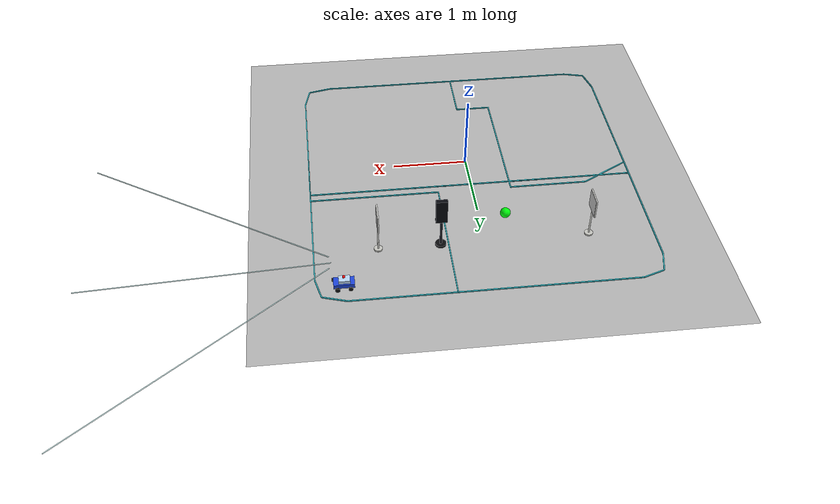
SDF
<sdf version="1.7">
 <world name="autonomous_map_3d_world">
  <model name="autonomous_map_3d">
   <static>1</static>
   <link name="map_link">
    <visual name="textured_map_visual">
     <geometry>
      <mesh><uri>model://autonomous_map_3d/meshes/autonomous_map_3d.dae</uri><scale>-1.0 1.0 1.0</scale></mesh>
     </geometry>
    </visual>
    <collision name="floor_collision">
     <pose>0 0 -0.01 0 -0 0</pose>
     <geometry><box><size>6 6 0.02</size></box></geometry>
    </collision>
   </link>
   <pose>0 0.3 0 0 -0 0</pose>
  </model>
  <model name="traffic_light_top_island">
   <static>1</static>
   <link name="traffic_light_link">
    <visual name="base_visual">
     <pose>0 0 0.015 0 -0 0</pose>
     <geometry><cylinder><radius>0.07</radius><length>0.03</length></cylinder></geometry>
     <material><ambient>0.03 0.03 0.04 1</ambient><diffuse>0.04 0.04 0.05 1</diffuse></material>
    </visual>
    <visual name="pole_visual">
     <pose>0 0 0.25 0 -0 0</pose>
     <geometry><cylinder><radius>0.016</radius><length>0.47</length></cylinder></geometry>
     <material><ambient>0.08 0.08 0.1 1</ambient><diffuse>0.1 0.1 0.13 1</diffuse></material>
    </visual>
    <visual name="housing_visual">
     <pose>0 -0.006 0.565 0 -0 0</pose>
     <geometry><box><size>0.145 0.055 0.34</size></box></geometry>
     <material><ambient>0.02 0.025 0.04 1</ambient><diffuse>0.03 0.035 0.06 1</diffuse></material>
    </visual>
    <visual name="red_lens_visual">
     <pose>0 -0.038 0.66 0 -0 0</pose>
     <geometry><sphere><radius>0.043</radius></sphere></geometry>
     <material>
      <ambient>0.035 0.002 0.002 1</ambient>
      <diffuse>0.06 0.004 0.004 1</diffuse>
      <emissive>0 0 0 1</emissive>
     </material>
    </visual>
    <visual name="yellow_lens_visual">
     <pose>0 -0.038 0.565 0 -0 0</pose>
     <geometry><sphere><radius>0.043</radius></sphere></geometry>
     <material>
      <ambient>0.035 0.025 0.002 1</ambient>
      <diffuse>0.06 0.045 0.004 1</diffuse>
      <emissive>0 0 0 1</emissive>
     </material>
    </visual>
    <visual name="green_lens_visual">
     <pose>0 -0.038 0.47 0 -0 0</pose>
     <geometry><sphere><radius>0.043</radius></sphere></geometry>
     <material>
      <ambient>0.002 0.04 0.004 1</ambient>
      <diffuse>0.004 0.078 0.01 1</diffuse>
      <emissive>0 0 0 1</emissive>
     </material>
    </visual>
   </link>
   <pose>0.562500 1.589100 0.000000 0.000000 -0.000000 -0.000003</pose>
  </model>
  <model name="traffic_light_top_island_green_active_lamp">
   <static>0</static>
   <link name="lamp_link">
    <gravity>0</gravity>
    <visual name="lamp_visual">
     <geometry><sphere><radius>0.065</radius></sphere></geometry>
     <material>
      <ambient>0 1 0.05 1</ambient>
      <diffuse>0 1 0.05 1</diffuse>
      <emissive>0 0.0313726 0.3 1</emissive>
     </material>
    </visual>
    <kinematic>1</kinematic>
    <inertial>
     <inertia><ixx>1</ixx><ixy>0</ixy><ixz>0</ixz><iyy>1</iyy><iyz>0</iyz><izz>1</izz></inertia>
     <mass>1</mass>
    </inertial>
   </link>
   <pose>-0.241400 1.589700 0.470000 0.000000 -0.000000 3.141593</pose>
  </model>
  <model name="sign_go_straight_top_island">
   <static>1</static>
   <link name="sign_link">
    <visual name="base_visual">
     <pose>0 0 0.01 0 -0 0</pose>
     <geometry><cylinder><radius>0.055</radius><length>0.02</length></cylinder></geometry>
     <material><ambient>0.72 0.72 0.7 1</ambient><diffuse>0.78 0.78 0.76 1</diffuse></material>
    </visual>
    <visual name="pole_visual">
     <pose>0 0 0.245 0 -0 0</pose>
     <geometry><cylinder><radius>0.011</radius><length>0.47</length></cylinder></geometry>
     <material><ambient>0.72 0.72 0.7 1</ambient><diffuse>0.82 0.82 0.8 1</diffuse></material>
    </visual>
    <visual name="back_plate_visual">
     <pose>0 0 0.52 0 -0 0</pose>
     <geometry><box><size>0.26 0.014 0.26</size></box></geometry>
     <material><ambient>0.96 0.96 0.94 1</ambient><diffuse>0.98 0.98 0.96 1</diffuse></material>
    </visual>
    <visual name="sign_face_visual">
     <pose>0 -0.011 0.52 0 -0 0</pose>
     <geometry><box><size>0.246 0.004 0.246</size></box></geometry>
     <material>
      <script>
       <uri>model://road_sign_go_straight/materials/scripts</uri>
       <uri>model://road_sign_go_straight/materials/textures</uri>
       <name>RoadSign/GoStraight</name>
      </script>
     </material>
    </visual>
   </link>
   <pose>1.359400 1.589100 0.000000 0.000000 -0.000000 1.570793</pose>
  </model>
  <model name="sign_turn_right_top_right_island">
   <static>1</static>
   <link name="sign_link">
    <visual name="base_visual">
     <pose>0 0 0.01 0 -0 0</pose>
     <geometry><cylinder><radius>0.055</radius><length>0.02</length></cylinder></geometry>
     <material><ambient>0.72 0.72 0.7 1</ambient><diffuse>0.78 0.78 0.76 1</diffuse></material>
    </visual>
    <visual name="pole_visual">
     <pose>0 0 0.245 0 -0 0</pose>
     <geometry><cylinder><radius>0.011</radius><length>0.47</length></cylinder></geometry>
     <material><ambient>0.72 0.72 0.7 1</ambient><diffuse>0.82 0.82 0.8 1</diffuse></material>
    </visual>
    <visual name="back_plate_visual">
     <pose>0 0 0.52 0 -0 0</pose>
     <geometry><box><size>0.26 0.014 0.26</size></box></geometry>
     <material><ambient>0.96 0.96 0.94 1</ambient><diffuse>0.98 0.98 0.96 1</diffuse></material>
    </visual>
    <visual name="sign_face_visual">
     <pose>0 -0.011 0.52 0 -0 0</pose>
     <geometry><box><size>0.246 0.004 0.246</size></box></geometry>
     <material>
      <script>
       <uri>model://road_sign_turn_right/materials/scripts</uri>
       <uri>model://road_sign_turn_right/materials/textures</uri>
       <name>RoadSign/TurnRight</name>
      </script>
     </material>
    </visual>
   </link>
   <pose>-1.359400 1.589100 0.000000 0.000000 -0.000000 1.570793</pose>
  </model>
  <model name="track_preview_car">
   <static>0</static>
   <allow_auto_disable>0</allow_auto_disable>
   <link name="body">
    <inertial>
     <mass>1</mass>
     <inertia><ixx>0.01</ixx><iyy>0.01</iyy><izz>0.01</izz><ixy>0</ixy><ixz>0</ixz><iyz>0</iyz></inertia>
    </inertial>
    <visual name="chassis_visual">
     <pose>0 0 0.065 0 -0 0</pose>
     <geometry><box><size>0.26 0.14 0.055</size></box></geometry>
     <material>
      <ambient>0.08 0.2 0.7 1</ambient>
      <diffuse>0.12 0.28 0.88 1</diffuse>
      <specular>0.1 0.1 0.1 1</specular>
     </material>
    </visual>
    <visual name="roof_visual">
     <pose>-0.005 0 0.115 0 -0 0</pose>
     <geometry><box><size>0.14 0.105 0.045</size></box></geometry>
     <material>
      <ambient>0.65 0.78 0.95 0.92</ambient>
      <diffuse>0.75 0.86 0.98 0.92</diffuse>
      <specular>0.1 0.1 0.1 1</specular>
     </material>
    </visual>
    <visual name="front_marker_visual">
     <pose>0.105 0 0.083 0 -0 0</pose>
     <geometry><box><size>0.025 0.075 0.018</size></box></geometry>
     <material>
      <ambient>1 0.85 0.2 1</ambient>
      <diffuse>1 0.88 0.25 1</diffuse>
      <specular>0.05 0.05 0.05 1</specular>
     </material>
    </visual>
    <visual name="camera_lens_visual">
     <pose>0.138 0 0.126 0 -0 0</pose>
     <geometry><box><size>0.016 0.04 0.022</size></box></geometry>
     <material>
      <ambient>0.02 0.02 0.025 1</ambient>
      <diffuse>0.04 0.04 0.05 1</diffuse>
      <specular>0.05 0.05 0.05 1</specular>
     </material>
    </visual>
    <visual name="camera_view_left_ray_visual">
     <pose>1.67 1.15 0.335 -0 0.0505 0.6109</pose>
     <geometry><box><size>3.68 0.008 0.008</size></box></geometry>
     <material>
      <ambient>0.85 1 1 0.82</ambient>
      <diffuse>0.85 1 1 0.82</diffuse>
      <emissive>0.2 0.55 0.75 1</emissive>
     </material>
    </visual>
    <visual name="camera_view_center_ray_visual">
     <pose>1.67 0 0.335 0 0.0555 0</pose>
     <geometry><box><size>3.0647 0.008 0.008</size></box></geometry>
     <material>
      <ambient>0.85 1 1 0.82</ambient>
      <diffuse>0.85 1 1 0.82</diffuse>
      <emissive>0.2 0.55 0.75 1</emissive>
     </material>
    </visual>
    <visual name="camera_view_right_ray_visual">
     <pose>1.67 -1.15 0.335 0 0.0505 -0.6109</pose>
     <geometry><box><size>3.68 0.008 0.008</size></box></geometry>
     <material>
      <ambient>0.85 1 1 0.82</ambient>
      <diffuse>0.85 1 1 0.82</diffuse>
      <emissive>0.2 0.55 0.75 1</emissive>
     </material>
    </visual>
    <visual name="debug_origin_marker_visual">
     <pose>0 0 0.165 0 -0 0</pose>
     <geometry><sphere><radius>0.018</radius></sphere></geometry>
     <material>
      <ambient>1 0.02 0.02 1</ambient>
      <diffuse>1 0.04 0.04 1</diffuse>
      <specular>0.08 0.08 0.08 1</specular>
     </material>
    </visual>
    <visual name="debug_ground_origin_visual">
     <pose>0 0 -0.017 0 -0 0</pose>
     <geometry><cylinder><radius>0.018</radius><length>0.004</length></cylinder></geometry>
     <material>
      <ambient>1 0.02 0.02 1</ambient>
      <diffuse>1 0.04 0.04 1</diffuse>
      <specular>0.08 0.08 0.08 1</specular>
     </material>
    </visual>
    <visual name="debug_ground_footprint_front_visual">
     <pose>0.165 0 -0.017 0 -0 0</pose>
     <geometry><box><size>0.008 0.238 0.004</size></box></geometry>
     <material>
      <ambient>0 0.7 1 1</ambient>
      <diffuse>0.05 0.86 1 1</diffuse>
      <specular>0.02 0.02 0.02 1</specular>
     </material>
    </visual>
    <visual name="debug_ground_footprint_rear_visual">
     <pose>-0.145 0 -0.017 0 -0 0</pose>
     <geometry><box><size>0.008 0.238 0.004</size></box></geometry>
     <material>
      <ambient>0 0.7 1 1</ambient>
      <diffuse>0.05 0.86 1 1</diffuse>
      <specular>0.02 0.02 0.02 1</specular>
     </material>
    </visual>
    <visual name="debug_ground_footprint_left_visual">
     <pose>0.01 0.115 -0.017 0 -0 0</pose>
     <geometry><box><size>0.318 0.008 0.004</size></box></geometry>
     <material>
      <ambient>0 0.7 1 1</ambient>
      <diffuse>0.05 0.86 1 1</diffuse>
      <specular>0.02 0.02 0.02 1</specular>
     </material>
    </visual>
    <visual name="debug_ground_footprint_right_visual">
     <pose>0.01 -0.115 -0.017 0 -0 0</pose>
     <geometry><box><size>0.318 0.008 0.004</size></box></geometry>
     <material>
      <ambient>0 0.7 1 1</ambient>
      <diffuse>0.05 0.86 1 1</diffuse>
      <specular>0.02 0.02 0.02 1</specular>
     </material>
    </visual>
    <visual name="rear_left_dummy_wheel_visual">
     <pose>-0.08 0.085 0.032 1.5708 -0 0</pose>
     <geometry><cylinder><radius>0.028</radius><length>0.016</length></cylinder></geometry>
     <material>
      <ambient>0.03 0.03 0.03 1</ambient>
      <diffuse>0.07 0.07 0.07 1</diffuse>
      <specular>0.02 0.02 0.02 1</specular>
     </material>
    </visual>
    <visual name="rear_right_dummy_wheel_visual">
     <pose>-0.08 -0.085 0.032 1.5708 -0 0</pose>
     <geometry><cylinder><radius>0.028</radius><length>0.016</length></cylinder></geometry>
     <material>
      <ambient>0.03 0.03 0.03 1</ambient>
      <diffuse>0.07 0.07 0.07 1</diffuse>
      <specular>0.02 0.02 0.02 1</specular>
     </material>
    </visual>
    <collision name="rear_left_caster_collision">
     <pose>-0.095 0.072 0.026 0 -0 0</pose>
     <geometry><sphere><radius>0.024</radius></sphere></geometry>
     <surface><friction><ode><mu>0.05</mu><mu2>0.05</mu2></ode></friction></surface>
    </collision>
    <collision name="rear_right_caster_collision">
     <pose>-0.095 -0.072 0.026 0 -0 0</pose>
     <geometry><sphere><radius>0.024</radius></sphere></geometry>
     <surface><friction><ode><mu>0.05</mu><mu2>0.05</mu2></ode></friction></surface>
    </collision>
    <collision name="body_collision">
     <pose>0 0 0.065 0 -0 0</pose>
     <geometry><box><size>0.26 0.14 0.05</size></box></geometry>
    </collision>
    <sensor name="front_camera" type="camera">
     <pose>0.14 0 0.42 0 0.18 0</pose>
     <always_on>1</always_on>
     <update_rate>30</update_rate>
     <visualize>0</visualize>
     <camera>
      <horizontal_fov>2.45</horizontal_fov>
      <image><width>960</width><height>540</height><format>R8G8B8</format></image>
      <clip><near>0.02</near><far>6</far></clip>
     </camera>
     <plugin name="front_camera_controller" filename="libgazebo_ros_camera.so">
      <ros>
       <namespace>/track_preview_car</namespace>
       <remapping>image_raw:=image_raw</remapping>
       <remapping>camera_info:=camera_info</remapping>
      </ros>
      <camera_name>camera</camera_name>
      <frame_name>track_preview_car/front_camera</frame_name>
     </plugin>
    </sensor>
   </link>
   <link name="left_wheel">
    <pose>0.08 0.088 0.032 0 -0 0</pose>
    <inertial>
     <mass>0.08</mass>
     <inertia><ixx>5e-05</ixx><iyy>8e-05</iyy><izz>5e-05</izz><ixy>0</ixy><ixz>0</ixz><iyz>0</iyz></inertia>
    </inertial>
    <visual name="left_wheel_visual">
     <pose>0 0 0 1.5708 -0 0</pose>
     <geometry><cylinder><radius>0.03</radius><length>0.02</length></cylinder></geometry>
     <material>
      <ambient>0.03 0.03 0.03 1</ambient>
      <diffuse>0.07 0.07 0.07 1</diffuse>
      <specular>0.02 0.02 0.02 1</specular>
     </material>
    </visual>
    <collision name="left_wheel_collision">
     <pose>0 0 0 1.5708 -0 0</pose>
     <geometry><cylinder><radius>0.03</radius><length>0.02</length></cylinder></geometry>
     <surface><friction><ode><mu>1.2</mu><mu2>1.2</mu2></ode></friction></surface>
    </collision>
   </link>
   <link name="right_wheel">
    <pose>0.08 -0.088 0.032 0 -0 0</pose>
    <inertial>
     <mass>0.08</mass>
     <inertia><ixx>5e-05</ixx><iyy>8e-05</iyy><izz>5e-05</izz><ixy>0</ixy><ixz>0</ixz><iyz>0</iyz></inertia>
    </inertial>
    <visual name="right_wheel_visual">
     <pose>0 0 0 1.5708 -0 0</pose>
     <geometry><cylinder><radius>0.03</radius><length>0.02</length></cylinder></geometry>
     <material>
      <ambient>0.03 0.03 0.03 1</ambient>
      <diffuse>0.07 0.07 0.07 1</diffuse>
      <specular>0.02 0.02 0.02 1</specular>
     </material>
    </visual>
    <collision name="right_wheel_collision">
     <pose>0 0 0 1.5708 -0 0</pose>
     <geometry><cylinder><radius>0.03</radius><length>0.02</length></cylinder></geometry>
     <surface><friction><ode><mu>1.2</mu><mu2>1.2</mu2></ode></friction></surface>
    </collision>
   </link>
   <joint name="left_wheel_joint" type="revolute">
    <parent>body</parent>
    <child>left_wheel</child>
    <axis>
     <xyz>0 1 0</xyz>
     <limit><lower>-1e+16</lower><upper>1e+16</upper></limit>
     <dynamics><spring_reference>0</spring_reference><spring_stiffness>0</spring_stiffness></dynamics>
    </axis>
   </joint>
   <joint name="right_wheel_joint" type="revolute">
    <parent>body</parent>
    <child>right_wheel</child>
    <axis>
     <xyz>0 1 0</xyz>
     <limit><lower>-1e+16</lower><upper>1e+16</upper></limit>
     <dynamics><spring_reference>0</spring_reference><spring_stiffness>0</spring_stiffness></dynamics>
    </axis>
   </joint>
   <plugin name="track_preview_car_diff_drive" filename="libgazebo_ros_diff_drive.so">
    <ros>
     <namespace>/track_preview_car</namespace>
     <remapping>cmd_vel:=cmd_vel</remapping>
     <remapping>odom:=odom</remapping>
    </ros>
    <left_joint>left_wheel_joint</left_joint>
    <right_joint>right_wheel_joint</right_joint>
    <wheel_separation>0.176</wheel_separation>
    <wheel_diameter>0.06</wheel_diameter>
    <max_wheel_torque>2.0</max_wheel_torque>
    <max_wheel_acceleration>8.0</max_wheel_acceleration>
    <odometry_frame>odom</odometry_frame>
    <robot_base_frame>body</robot_base_frame>
    <publish_odom>1</publish_odom>
    <publish_odom_tf>0</publish_odom_tf>
    <publish_wheel_tf>0</publish_wheel_tf>
    <update_rate>50</update_rate>
   </plugin>
   <pose>1.828120 2.179690 -0.002000 0.000000 -0.000000 0.000003</pose>
  </model>
  <model name="route_preview_map_pose_offset_cyan">
   <static>1</static>
   <link name="route_preview_link">
    <visual name="route_segment_0000">
     <pose>-0.937500 2.479687 0.055000 0.000000 0.000000 0.000000</pose>
     <geometry><box><size>1.781250 0.014000 0.014000</size></box></geometry>
     <material>
      <script><name>Gazebo/RoutePreviewCyan</name></script>
      <ambient>0 0.9 1 1</ambient>
      <diffuse>0 0.9 1 1</diffuse>
      <emissive>0 0.5 0.8 1</emissive>
     </material>
    </visual>
    <visual name="route_segment_0001">
     <pose>0.210938 2.479687 0.055000 0.000000 0.000000 0.000000</pose>
     <geometry><box><size>0.515625 0.014000 0.014000</size></box></geometry>
     <material>
      <script><name>Gazebo/RoutePreviewCyan</name></script>
      <ambient>0 0.9 1 1</ambient>
      <diffuse>0 0.9 1 1</diffuse>
      <emissive>0 0.5 0.8 1</emissive>
     </material>
    </visual>
    <visual name="route_segment_0002">
     <pose>0.703125 2.479687 0.055000 0.000000 0.000000 0.000000</pose>
     <geometry><box><size>0.468750 0.014000 0.014000</size></box></geometry>
     <material>
      <script><name>Gazebo/RoutePreviewCyan</name></script>
      <ambient>0 0.9 1 1</ambient>
      <diffuse>0 0.9 1 1</diffuse>
      <emissive>0 0.5 0.8 1</emissive>
     </material>
    </visual>
    <visual name="route_segment_0003">
     <pose>1.371094 2.479687 0.055000 0.000000 0.000000 0.000000</pose>
     <geometry><box><size>0.867188 0.014000 0.014000</size></box></geometry>
     <material>
      <script><name>Gazebo/RoutePreviewCyan</name></script>
      <ambient>0 0.9 1 1</ambient>
      <diffuse>0 0.9 1 1</diffuse>
      <emissive>0 0.5 0.8 1</emissive>
     </material>
    </visual>
    <visual name="route_segment_0004">
     <pose>1.957031 2.432812 0.055000 0.000000 0.000000 -0.298499</pose>
     <geometry><box><size>0.318784 0.014000 0.014000</size></box></geometry>
     <material>
      <script><name>Gazebo/RoutePreviewCyan</name></script>
      <ambient>0 0.9 1 1</ambient>
      <diffuse>0 0.9 1 1</diffuse>
      <emissive>0 0.5 0.8 1</emissive>
     </material>
    </visual>
    <visual name="route_segment_0005">
     <pose>2.144531 2.245312 0.055000 0.000000 0.000000 -1.325818</pose>
     <geometry><box><size>0.289906 0.014000 0.014000</size></box></geometry>
     <material>
      <script><name>Gazebo/RoutePreviewCyan</name></script>
      <ambient>0 0.9 1 1</ambient>
      <diffuse>0 0.9 1 1</diffuse>
      <emissive>0 0.5 0.8 1</emissive>
     </material>
    </visual>
    <visual name="route_segment_0006">
     <pose>2.179688 1.647656 0.055000 0.000000 0.000000 -1.570796</pose>
     <geometry><box><size>0.914062 0.014000 0.014000</size></box></geometry>
     <material>
      <script><name>Gazebo/RoutePreviewCyan</name></script>
      <ambient>0 0.9 1 1</ambient>
      <diffuse>0 0.9 1 1</diffuse>
      <emissive>0 0.5 0.8 1</emissive>
     </material>
    </visual>
    <visual name="route_segment_0007">
     <pose>2.179688 0.487500 0.055000 0.000000 0.000000 -1.570796</pose>
     <geometry><box><size>1.406250 0.014000 0.014000</size></box></geometry>
     <material>
      <script><name>Gazebo/RoutePreviewCyan</name></script>
      <ambient>0 0.9 1 1</ambient>
      <diffuse>0 0.9 1 1</diffuse>
      <emissive>0 0.5 0.8 1</emissive>
     </material>
    </visual>
    <visual name="route_segment_0008">
     <pose>2.179688 -0.860156 0.055000 0.000000 0.000000 -1.570796</pose>
     <geometry><box><size>1.289062 0.014000 0.014000</size></box></geometry>
     <material>
      <script><name>Gazebo/RoutePreviewCyan</name></script>
      <ambient>0 0.9 1 1</ambient>
      <diffuse>0 0.9 1 1</diffuse>
      <emissive>0 0.5 0.8 1</emissive>
     </material>
    </visual>
    <visual name="route_segment_0009">
     <pose>2.144531 -1.657031 0.055000 0.000000 0.000000 -1.797595</pose>
     <geometry><box><size>0.312695 0.014000 0.014000</size></box></geometry>
     <material>
      <script><name>Gazebo/RoutePreviewCyan</name></script>
      <ambient>0 0.9 1 1</ambient>
      <diffuse>0 0.9 1 1</diffuse>
      <emissive>0 0.5 0.8 1</emissive>
     </material>
    </visual>
    <visual name="route_segment_0010">
     <pose>1.957031 -1.844531 0.055000 0.000000 0.000000 -2.914794</pose>
     <geometry><box><size>0.312695 0.014000 0.014000</size></box></geometry>
     <material>
      <script><name>Gazebo/RoutePreviewCyan</name></script>
      <ambient>0 0.9 1 1</ambient>
      <diffuse>0 0.9 1 1</diffuse>
      <emissive>0 0.5 0.8 1</emissive>
     </material>
    </visual>
    <visual name="route_segment_0011">
     <pose>1.371094 -1.879687 0.055000 0.000000 0.000000 3.141593</pose>
     <geometry><box><size>0.867188 0.014000 0.014000</size></box></geometry>
     <material>
      <script><name>Gazebo/RoutePreviewCyan</name></script>
      <ambient>0 0.9 1 1</ambient>
      <diffuse>0 0.9 1 1</diffuse>
      <emissive>0 0.5 0.8 1</emissive>
     </material>
    </visual>
    <visual name="route_segment_0012">
     <pose>0.445312 -1.879687 0.055000 0.000000 0.000000 3.141593</pose>
     <geometry><box><size>0.984375 0.014000 0.014000</size></box></geometry>
     <material>
      <script><name>Gazebo/RoutePreviewCyan</name></script>
      <ambient>0 0.9 1 1</ambient>
      <diffuse>0 0.9 1 1</diffuse>
      <emissive>0 0.5 0.8 1</emissive>
     </material>
    </visual>
    <visual name="route_segment_0013">
     <pose>-0.539062 -1.879687 0.055000 0.000000 0.000000 3.141593</pose>
     <geometry><box><size>0.984375 0.014000 0.014000</size></box></geometry>
     <material>
      <script><name>Gazebo/RoutePreviewCyan</name></script>
      <ambient>0 0.9 1 1</ambient>
      <diffuse>0 0.9 1 1</diffuse>
      <emissive>0 0.5 0.8 1</emissive>
     </material>
    </visual>
    <visual name="route_segment_0014">
     <pose>-1.429688 -1.879687 0.055000 0.000000 0.000000 3.141593</pose>
     <geometry><box><size>0.796875 0.014000 0.014000</size></box></geometry>
     <material>
      <script><name>Gazebo/RoutePreviewCyan</name></script>
      <ambient>0 0.9 1 1</ambient>
      <diffuse>0 0.9 1 1</diffuse>
      <emissive>0 0.5 0.8 1</emissive>
     </material>
    </visual>
    <visual name="route_segment_0015">
     <pose>-1.968750 -1.844531 0.055000 0.000000 0.000000 2.896614</pose>
     <geometry><box><size>0.289906 0.014000 0.014000</size></box></geometry>
     <material>
      <script><name>Gazebo/RoutePreviewCyan</name></script>
      <ambient>0 0.9 1 1</ambient>
      <diffuse>0 0.9 1 1</diffuse>
      <emissive>0 0.5 0.8 1</emissive>
     </material>
    </visual>
    <visual name="route_segment_0016">
     <pose>-2.144531 -1.657031 0.055000 0.000000 0.000000 1.797595</pose>
     <geometry><box><size>0.312695 0.014000 0.014000</size></box></geometry>
     <material>
      <script><name>Gazebo/RoutePreviewCyan</name></script>
      <ambient>0 0.9 1 1</ambient>
      <diffuse>0 0.9 1 1</diffuse>
      <emissive>0 0.5 0.8 1</emissive>
     </material>
    </visual>
    <visual name="route_segment_0017">
     <pose>-2.179688 -0.602344 0.055000 0.000000 0.000000 1.570796</pose>
     <geometry><box><size>1.804688 0.014000 0.014000</size></box></geometry>
     <material>
      <script><name>Gazebo/RoutePreviewCyan</name></script>
      <ambient>0 0.9 1 1</ambient>
      <diffuse>0 0.9 1 1</diffuse>
      <emissive>0 0.5 0.8 1</emissive>
     </material>
    </visual>
    <visual name="route_segment_0018">
     <pose>-2.179688 0.417188 0.055000 0.000000 0.000000 1.570796</pose>
     <geometry><box><size>0.234375 0.014000 0.014000</size></box></geometry>
     <material>
      <script><name>Gazebo/RoutePreviewCyan</name></script>
      <ambient>0 0.9 1 1</ambient>
      <diffuse>0 0.9 1 1</diffuse>
      <emissive>0 0.5 0.8 1</emissive>
     </material>
    </visual>
    <visual name="route_segment_0019">
     <pose>-2.179688 0.862500 0.055000 0.000000 0.000000 1.570796</pose>
     <geometry><box><size>0.656250 0.014000 0.014000</size></box></geometry>
     <material>
      <script><name>Gazebo/RoutePreviewCyan</name></script>
      <ambient>0 0.9 1 1</ambient>
      <diffuse>0 0.9 1 1</diffuse>
      <emissive>0 0.5 0.8 1</emissive>
     </material>
    </visual>
    <visual name="route_segment_0020">
     <pose>-2.179688 1.647656 0.055000 0.000000 0.000000 1.570796</pose>
     <geometry><box><size>0.914062 0.014000 0.014000</size></box></geometry>
     <material>
      <script><name>Gazebo/RoutePreviewCyan</name></script>
      <ambient>0 0.9 1 1</ambient>
      <diffuse>0 0.9 1 1</diffuse>
      <emissive>0 0.5 0.8 1</emissive>
     </material>
    </visual>
    <visual name="route_segment_0021">
     <pose>-2.144531 2.245312 0.055000 0.000000 0.000000 1.325818</pose>
     <geometry><box><size>0.289906 0.014000 0.014000</size></box></geometry>
     <material>
      <script><name>Gazebo/RoutePreviewCyan</name></script>
      <ambient>0 0.9 1 1</ambient>
      <diffuse>0 0.9 1 1</diffuse>
      <emissive>0 0.5 0.8 1</emissive>
     </material>
    </visual>
    <visual name="route_segment_0022">
     <pose>-1.968750 2.432812 0.055000 0.000000 0.000000 0.321751</pose>
     <geometry><box><size>0.296464 0.014000 0.014000</size></box></geometry>
     <material>
      <script><name>Gazebo/RoutePreviewCyan</name></script>
      <ambient>0 0.9 1 1</ambient>
      <diffuse>0 0.9 1 1</diffuse>
      <emissive>0 0.5 0.8 1</emissive>
     </material>
    </visual>
    <visual name="route_segment_0023">
     <pose>0.468750 1.999219 0.055000 0.000000 0.000000 -1.570796</pose>
     <geometry><box><size>0.960937 0.014000 0.014000</size></box></geometry>
     <material>
      <script><name>Gazebo/RoutePreviewCyan</name></script>
      <ambient>0 0.9 1 1</ambient>
      <diffuse>0 0.9 1 1</diffuse>
      <emissive>0 0.5 0.8 1</emissive>
     </material>
    </visual>
    <visual name="route_segment_0024">
     <pose>0.468750 1.085156 0.055000 0.000000 0.000000 -1.570796</pose>
     <geometry><box><size>0.867188 0.014000 0.014000</size></box></geometry>
     <material>
      <script><name>Gazebo/RoutePreviewCyan</name></script>
      <ambient>0 0.9 1 1</ambient>
      <diffuse>0 0.9 1 1</diffuse>
      <emissive>0 0.5 0.8 1</emissive>
     </material>
    </visual>
    <visual name="route_segment_0025">
     <pose>1.324219 0.651563 0.055000 0.000000 0.000000 0.000000</pose>
     <geometry><box><size>1.710938 0.014000 0.014000</size></box></geometry>
     <material>
      <script><name>Gazebo/RoutePreviewCyan</name></script>
      <ambient>0 0.9 1 1</ambient>
      <diffuse>0 0.9 1 1</diffuse>
      <emissive>0 0.5 0.8 1</emissive>
     </material>
    </visual>
    <visual name="route_segment_0026">
     <pose>2.179688 0.217969 0.055000 0.000000 0.000000 -1.570796</pose>
     <geometry><box><size>0.867188 0.014000 0.014000</size></box></geometry>
     <material>
      <script><name>Gazebo/RoutePreviewCyan</name></script>
      <ambient>0 0.9 1 1</ambient>
      <diffuse>0 0.9 1 1</diffuse>
      <emissive>0 0.5 0.8 1</emissive>
     </material>
    </visual>
    <visual name="route_segment_0027">
     <pose>-1.863281 0.534375 0.055000 0.000000 0.000000 0.000000</pose>
     <geometry><box><size>0.632812 0.014000 0.014000</size></box></geometry>
     <material>
      <script><name>Gazebo/RoutePreviewCyan</name></script>
      <ambient>0 0.9 1 1</ambient>
      <diffuse>0 0.9 1 1</diffuse>
      <emissive>0 0.5 0.8 1</emissive>
     </material>
    </visual>
    <visual name="route_segment_0028">
     <pose>-1.031250 0.534375 0.055000 0.000000 0.000000 0.000000</pose>
     <geometry><box><size>1.031250 0.014000 0.014000</size></box></geometry>
     <material>
      <script><name>Gazebo/RoutePreviewCyan</name></script>
      <ambient>0 0.9 1 1</ambient>
      <diffuse>0 0.9 1 1</diffuse>
      <emissive>0 0.5 0.8 1</emissive>
     </material>
    </visual>
    <visual name="route_segment_0029">
     <pose>-0.023438 0.534375 0.055000 0.000000 0.000000 0.000000</pose>
     <geometry><box><size>0.984375 0.014000 0.014000</size></box></geometry>
     <material>
      <script><name>Gazebo/RoutePreviewCyan</name></script>
      <ambient>0 0.9 1 1</ambient>
      <diffuse>0 0.9 1 1</diffuse>
      <emissive>0 0.5 0.8 1</emissive>
     </material>
    </visual>
    <visual name="route_segment_0030">
     <pose>1.324219 0.534375 0.055000 0.000000 0.000000 0.000000</pose>
     <geometry><box><size>1.710938 0.014000 0.014000</size></box></geometry>
     <material>
      <script><name>Gazebo/RoutePreviewCyan</name></script>
      <ambient>0 0.9 1 1</ambient>
      <diffuse>0 0.9 1 1</diffuse>
      <emissive>0 0.5 0.8 1</emissive>
     </material>
    </visual>
    <visual name="route_segment_0031">
     <pose>2.179688 0.159375 0.055000 0.000000 0.000000 -1.570796</pose>
     <geometry><box><size>0.750000 0.014000 0.014000</size></box></geometry>
     <material>
      <script><name>Gazebo/RoutePreviewCyan</name></script>
      <ambient>0 0.9 1 1</ambient>
      <diffuse>0 0.9 1 1</diffuse>
      <emissive>0 0.5 0.8 1</emissive>
     </material>
    </visual>
    <visual name="route_segment_0032">
     <pose>-0.046875 -1.516406 0.055000 0.000000 0.000000 1.570796</pose>
     <geometry><box><size>0.726562 0.014000 0.014000</size></box></geometry>
     <material>
      <script><name>Gazebo/RoutePreviewCyan</name></script>
      <ambient>0 0.9 1 1</ambient>
      <diffuse>0 0.9 1 1</diffuse>
      <emissive>0 0.5 0.8 1</emissive>
     </material>
    </visual>
    <visual name="route_segment_0033">
     <pose>-0.281250 -1.153125 0.055000 0.000000 0.000000 3.141593</pose>
     <geometry><box><size>0.468750 0.014000 0.014000</size></box></geometry>
     <material>
      <script><name>Gazebo/RoutePreviewCyan</name></script>
      <ambient>0 0.9 1 1</ambient>
      <diffuse>0 0.9 1 1</diffuse>
      <emissive>0 0.5 0.8 1</emissive>
     </material>
    </visual>
    <visual name="route_segment_0034">
     <pose>-0.515625 -0.250781 0.055000 0.000000 0.000000 1.570796</pose>
     <geometry><box><size>1.804688 0.014000 0.014000</size></box></geometry>
     <material>
      <script><name>Gazebo/RoutePreviewCyan</name></script>
      <ambient>0 0.9 1 1</ambient>
      <diffuse>0 0.9 1 1</diffuse>
      <emissive>0 0.5 0.8 1</emissive>
     </material>
    </visual>
    <visual name="route_segment_0035">
     <pose>-1.031250 0.651563 0.055000 0.000000 0.000000 3.141593</pose>
     <geometry><box><size>1.031250 0.014000 0.014000</size></box></geometry>
     <material>
      <script><name>Gazebo/RoutePreviewCyan</name></script>
      <ambient>0 0.9 1 1</ambient>
      <diffuse>0 0.9 1 1</diffuse>
      <emissive>0 0.5 0.8 1</emissive>
     </material>
    </visual>
    <visual name="route_segment_0036">
     <pose>-1.863281 0.475781 0.055000 0.000000 0.000000 -2.634494</pose>
     <geometry><box><size>0.723911 0.014000 0.014000</size></box></geometry>
     <material>
      <script><name>Gazebo/RoutePreviewCyan</name></script>
      <ambient>0 0.9 1 1</ambient>
      <diffuse>0 0.9 1 1</diffuse>
      <emissive>0 0.5 0.8 1</emissive>
     </material>
    </visual>
    <visual name="route_segment_0037">
     <pose>2.179688 0.159375 0.055000 0.000000 0.000000 1.570796</pose>
     <geometry><box><size>0.750000 0.014000 0.014000</size></box></geometry>
     <material>
      <script><name>Gazebo/RoutePreviewCyan</name></script>
      <ambient>0 0.9 1 1</ambient>
      <diffuse>0 0.9 1 1</diffuse>
      <emissive>0 0.5 0.8 1</emissive>
     </material>
    </visual>
    <visual name="route_segment_0038">
     <pose>1.324219 0.534375 0.055000 0.000000 0.000000 3.141593</pose>
     <geometry><box><size>1.710938 0.014000 0.014000</size></box></geometry>
     <material>
      <script><name>Gazebo/RoutePreviewCyan</name></script>
      <ambient>0 0.9 1 1</ambient>
      <diffuse>0 0.9 1 1</diffuse>
      <emissive>0 0.5 0.8 1</emissive>
     </material>
    </visual>
    <visual name="route_segment_0039">
     <pose>-0.023438 0.534375 0.055000 0.000000 0.000000 3.141593</pose>
     <geometry><box><size>0.984375 0.014000 0.014000</size></box></geometry>
     <material>
      <script><name>Gazebo/RoutePreviewCyan</name></script>
      <ambient>0 0.9 1 1</ambient>
      <diffuse>0 0.9 1 1</diffuse>
      <emissive>0 0.5 0.8 1</emissive>
     </material>
    </visual>
    <visual name="route_segment_0040">
     <pose>-1.031250 0.534375 0.055000 0.000000 0.000000 3.141593</pose>
     <geometry><box><size>1.031250 0.014000 0.014000</size></box></geometry>
     <material>
      <script><name>Gazebo/RoutePreviewCyan</name></script>
      <ambient>0 0.9 1 1</ambient>
      <diffuse>0 0.9 1 1</diffuse>
      <emissive>0 0.5 0.8 1</emissive>
     </material>
    </visual>
    <visual name="route_segment_0041">
     <pose>-1.863281 0.534375 0.055000 0.000000 0.000000 3.141593</pose>
     <geometry><box><size>0.632812 0.014000 0.014000</size></box></geometry>
     <material>
      <script><name>Gazebo/RoutePreviewCyan</name></script>
      <ambient>0 0.9 1 1</ambient>
      <diffuse>0 0.9 1 1</diffuse>
      <emissive>0 0.5 0.8 1</emissive>
     </material>
    </visual>
    <visual name="route_segment_0042">
     <pose>-1.863281 0.534375 0.055000 0.000000 0.000000 0.000000</pose>
     <geometry><box><size>0.632812 0.014000 0.014000</size></box></geometry>
     <material>
      <script><name>Gazebo/RoutePreviewCyan</name></script>
      <ambient>0 0.9 1 1</ambient>
      <diffuse>0 0.9 1 1</diffuse>
      <emissive>0 0.5 0.8 1</emissive>
     </material>
    </visual>
    <visual name="route_segment_0043">
     <pose>-1.031250 0.534375 0.055000 0.000000 0.000000 0.000000</pose>
     <geometry><box><size>1.031250 0.014000 0.014000</size></box></geometry>
     <material>
      <script><name>Gazebo/RoutePreviewCyan</name></script>
      <ambient>0 0.9 1 1</ambient>
      <diffuse>0 0.9 1 1</diffuse>
      <emissive>0 0.5 0.8 1</emissive>
     </material>
    </visual>
    <visual name="route_segment_0044">
     <pose>-0.023438 0.534375 0.055000 0.000000 0.000000 0.000000</pose>
     <geometry><box><size>0.984375 0.014000 0.014000</size></box></geometry>
     <material>
      <script><name>Gazebo/RoutePreviewCyan</name></script>
      <ambient>0 0.9 1 1</ambient>
      <diffuse>0 0.9 1 1</diffuse>
      <emissive>0 0.5 0.8 1</emissive>
     </material>
    </visual>
    <visual name="route_segment_0045">
     <pose>1.324219 0.534375 0.055000 0.000000 0.000000 0.000000</pose>
     <geometry><box><size>1.710938 0.014000 0.014000</size></box></geometry>
     <material>
      <script><name>Gazebo/RoutePreviewCyan</name></script>
      <ambient>0 0.9 1 1</ambient>
      <diffuse>0 0.9 1 1</diffuse>
      <emissive>0 0.5 0.8 1</emissive>
     </material>
    </visual>
    <visual name="route_segment_0046">
     <pose>2.179688 0.159375 0.055000 0.000000 0.000000 -1.570796</pose>
     <geometry><box><size>0.750000 0.014000 0.014000</size></box></geometry>
     <material>
      <script><name>Gazebo/RoutePreviewCyan</name></script>
      <ambient>0 0.9 1 1</ambient>
      <diffuse>0 0.9 1 1</diffuse>
      <emissive>0 0.5 0.8 1</emissive>
     </material>
    </visual>
   </link>
  </model>
 </world>
</sdf>
